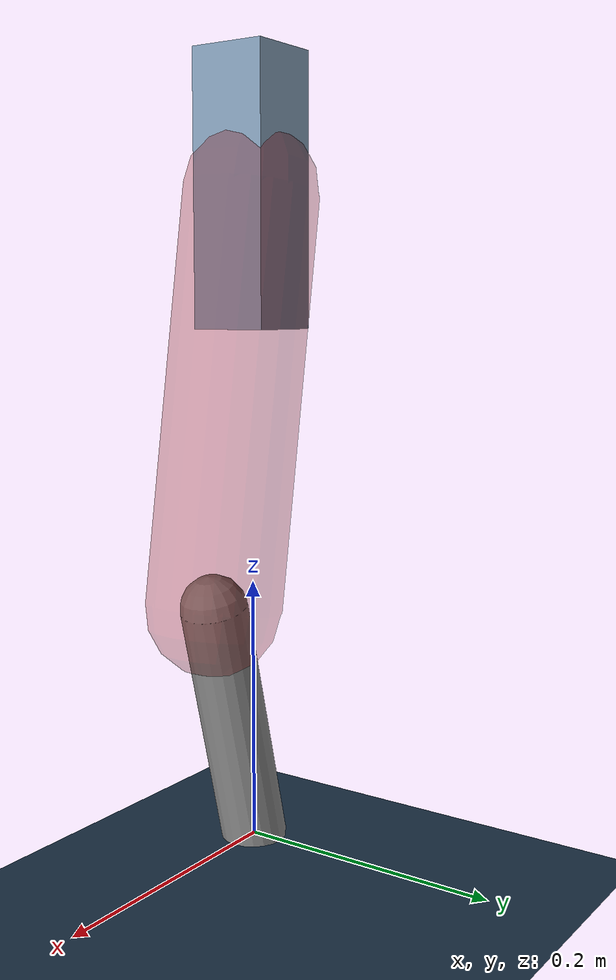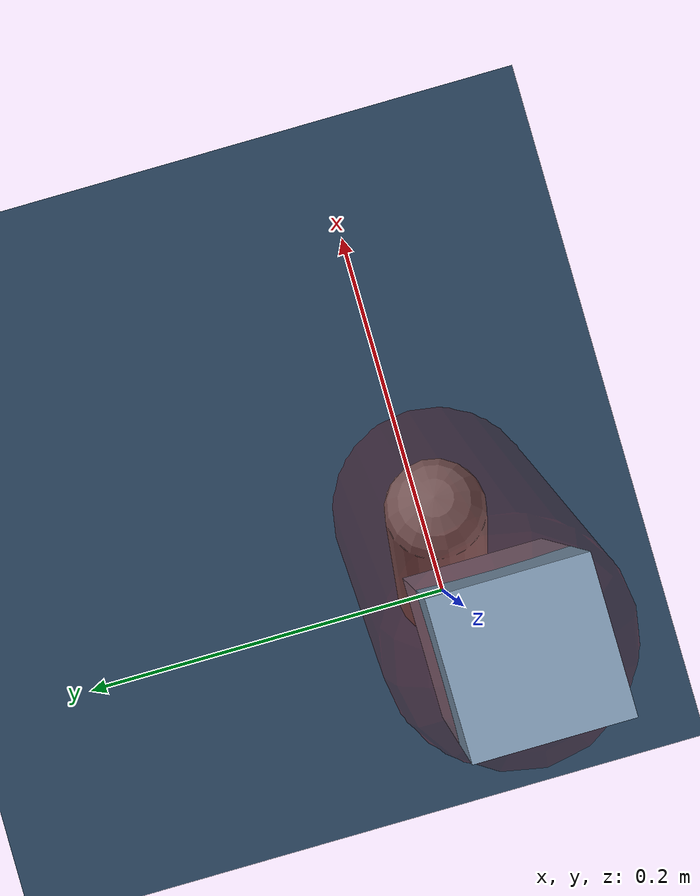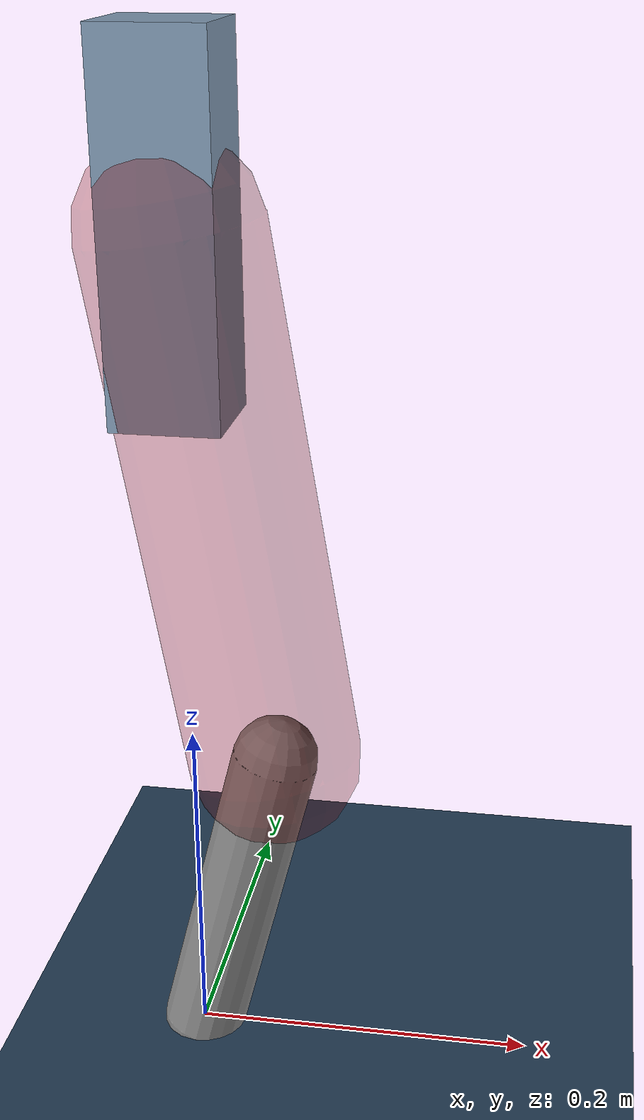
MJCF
<mujoco model="Hopper2D">
	<compiler inertiafromgeom="true" angle="radian" />
	<option timestep="0.001" integrator="implicit" cone="elliptic" solver="Newton" tolerance="1e-10" />

	<default>
		<geom contype="1" conaffinity="1" condim="3" friction="2 0.005 0.0001" solref="0.005 1" />
		<joint limited="true" damping="0.1" />
	</default>

	<asset>
		<texture name="skybox" type="skybox" builtin="gradient" rgb1=".4 .6 .8" rgb2="0 0 0" width="800" height="800" />
		<texture name="grid" type="2d" builtin="checker" rgb1=".1 .2 .3" rgb2=".2 .3 .4" width="300" height="300" mark="edge" markrgb=".2 .3 .4" />
		<material name="ground" texture="grid" texrepeat="1 1" texuniform="true" reflectance="0.1" />
		<material name="leg" rgba="0.5 0.6 0.7 1" />
	</asset>

	<worldbody>

		<geom name="floor" type="plane" size="5 5 0.25" material="ground" />

		<light directional="false" diffuse="0.8 0.8 0.8" specular="0.3 0.3 0.3" pos="0 0 2" dir="0 0 -1" />
		<light mode="targetbodycom" target="base" directional="false" diffuse="0.8 0.8 0.8" specular="0.3 0.3 0.3" pos="0 0 2" dir="0 0 -1" />

		<camera name="fixed" pos="0 -2 1" xyaxes="1 0 0 0 0 1" />
		<camera name="tracking" mode="trackcom" pos="0 -3 1" />

		<body name="root" pos="0 0 0.4909308320735096">
			<joint name="slide_x" type="slide" axis="1 0 0" range="-100 100" />
			<joint name="slide_z" type="slide" axis="0 0 1" range="0 10" />

			<body name="base" pos="0 0 0">
				<geom name="torso" type="box" size="0.03 0.03 0.1" mass="2.447" material="leg" />

				<body name="link1" pos="0 0 0" euler="0 1.4113317629748319 0">
					<joint type="hinge" axis="0 -1 0" pos="0 0 0" name="hinge1" limited="true" range="-3.14 3.14" stiffness="0" damping="0.1" />
					<geom name="thigh" type="capsule" fromto="0 0 0 0.30558855067956936 0 0" size="0.05" rgba="0.5 0 0 0.3" mass="1.0038890868348371" />

					<body name="link2" pos="0.30558855067956936 0 0" euler="0 0.4104993404130073 0">
						<joint type="hinge" axis="0 -1 0" pos="0 0 0" name="hinge2" limited="true" range="-3.14 3.14" stiffness="0" damping="0.1" />
						<geom name="shank" type="capsule" fromto="0 0 0 0.19534228139394025 0 0" size="0.025" mass="0.3969738251151522" />

					</body>
				</body>
			</body>
		</body>
	</worldbody>

	<actuator>
		<motor name="torque1" joint="hinge1" ctrlrange="-62.72664063148357 62.72664063148357" ctrllimited="true" gear="1" />
		<motor name="torque2" joint="hinge2" ctrlrange="-91.36320255460137 91.36320255460137" ctrllimited="true" gear="1" />
	</actuator>
</mujoco>
